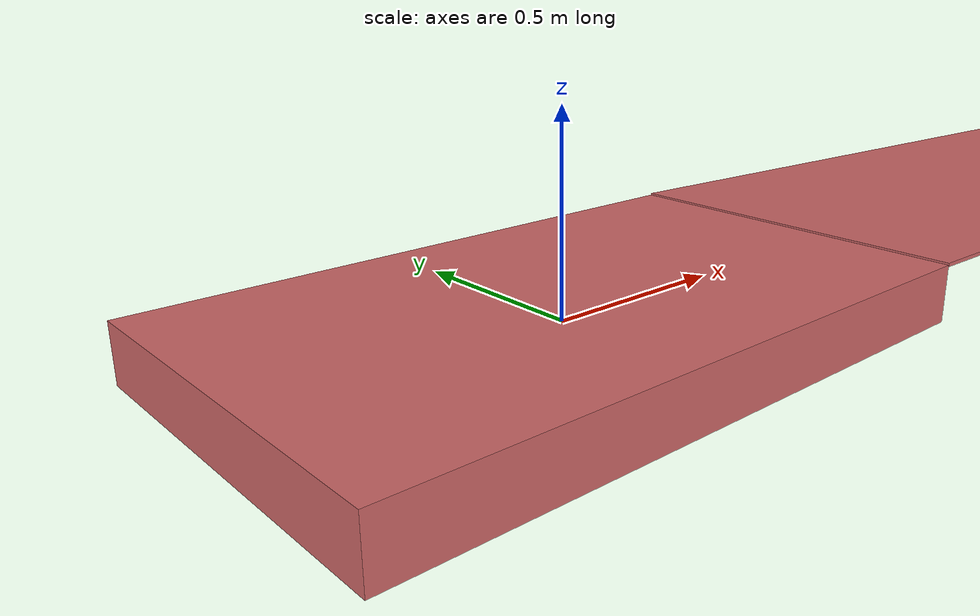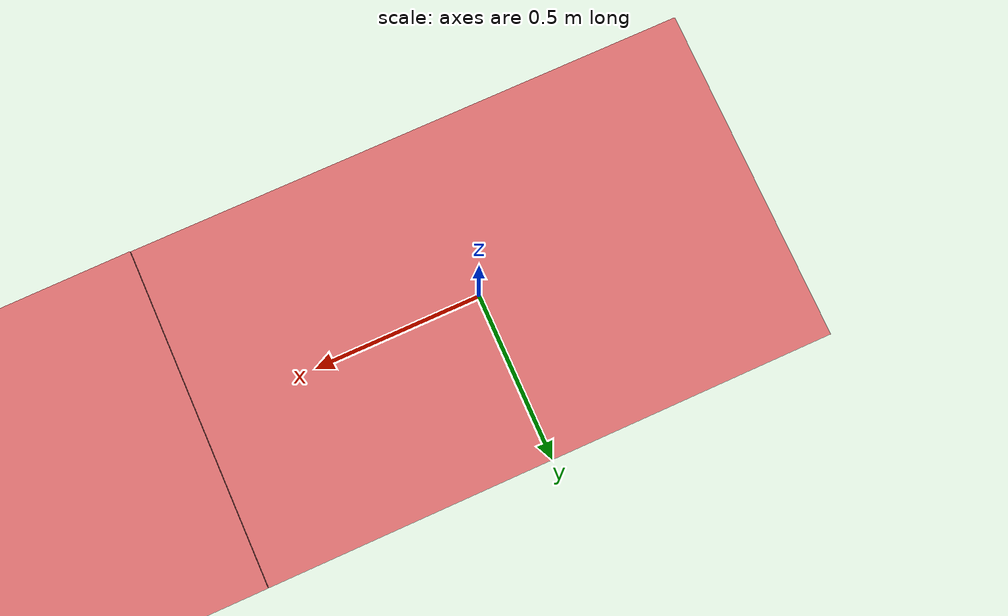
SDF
<?xml version='1.0'?>
 <sdf version='1.5'>
  <model name="ramp">

   <static>true</static>

    <link name='ramp'>

      <collision name='collision_1'>
	<pose>0 0 0 0 0 0</pose>
        <geometry>
          <box>
            <size>1.67458 1.0 0.15</size>
          </box>
        </geometry>
      </collision>
      <visual name='visual_1'>
	<pose>0 0 0 0 0 0</pose>
        <geometry>
          <box>
            <size>1.67458 1.0 0.15</size>
          </box>
        </geometry>
        <material>
          <ambient>0 0 1  1</ambient>
          <diffuse>0.8 0.4 0.4 1</diffuse>
          <specular>0.7 0.4 0.3  1</specular>
          <emissive>0.4 0.3 0.2 1</emissive>
        </material>
      </visual>
      <collision name='collision_2'>
      <pose>3.98729 0 0 0 0.023809 0</pose>
        <geometry>
          <box>
            <size>6.3 1.0 0.01</size>
          </box>
        </geometry>
      </collision>
      <visual name='visual_2'>
      <pose>3.98729 0 0 0 0.023809 0</pose>
        <geometry>
          <box>
            <size>6.3 1.0 0.01</size>
          </box>
        </geometry>
        <material>
          <ambient>0 0 1  1</ambient>
          <diffuse>0.8 0.4 0.4 1</diffuse>
          <specular>0.7 0.4 0.3  1</specular>
          <emissive>0.4 0.3 0.2 1</emissive>
        </material>
      </visual>
    </link>

  </model>
</sdf>
